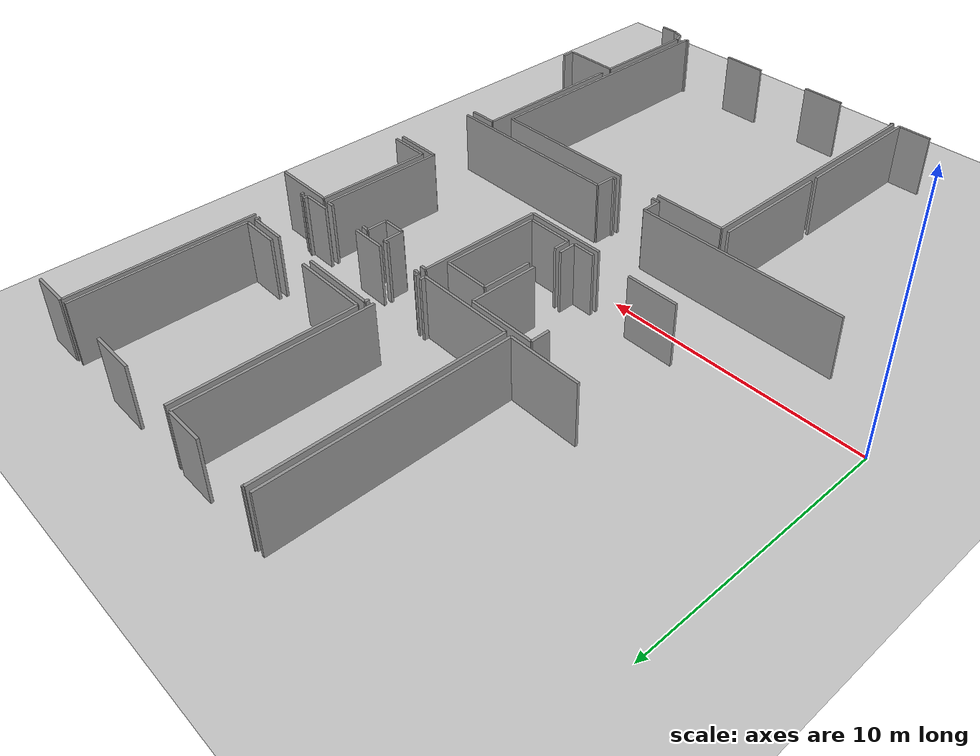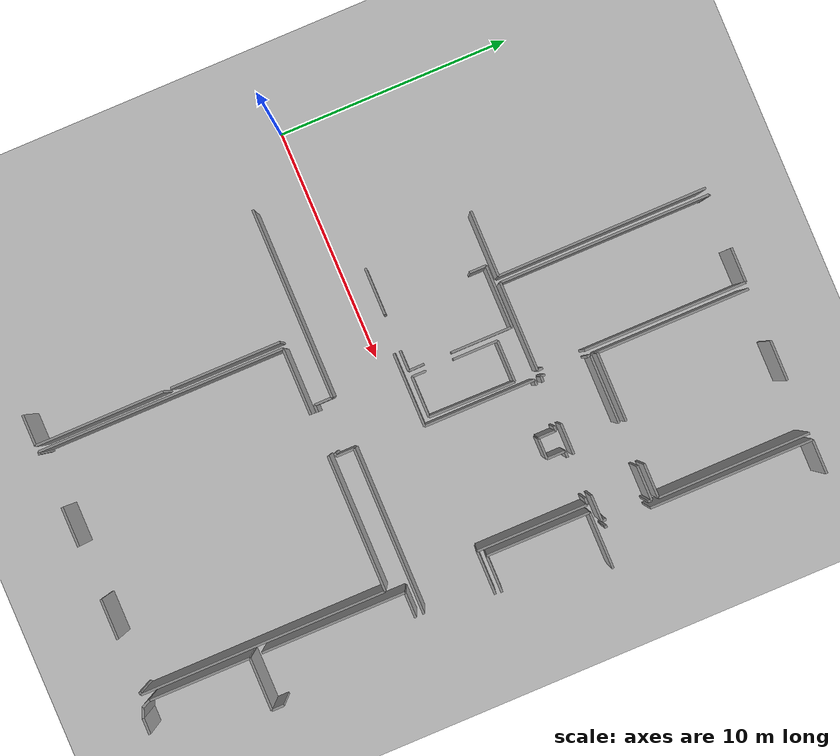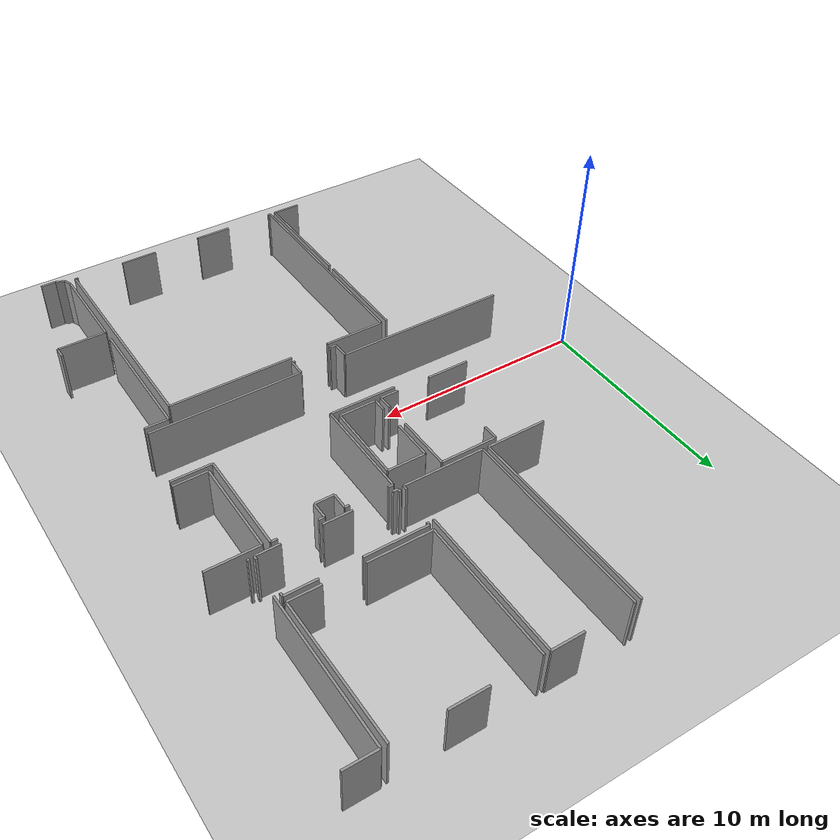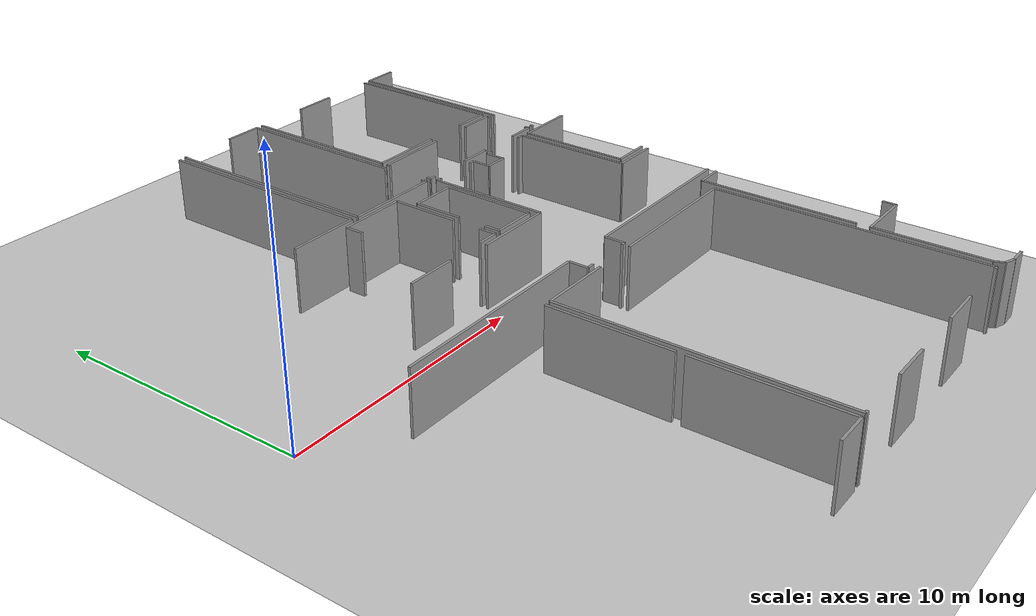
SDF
<sdf version="1.6">
 <world name="default">
  <model name="ground_plane">
   <static>1</static>
   <link name="link">
    <collision name="collision">
     <geometry><plane><normal>0 0 1</normal><size>100 100</size></plane></geometry>
     <surface><friction><ode><mu>100</mu><mu2>50</mu2></ode></friction></surface>
    </collision>
    <visual name="visual">
     <cast_shadows>0</cast_shadows>
     <geometry><plane><normal>0 0 1</normal><size>100 100</size></plane></geometry>
     <material>
      <script><uri>file://media/materials/scripts/gazebo.material</uri><name>Gazebo/Grey</name></script>
     </material>
    </visual>
   </link>
  </model>
  <model name="0510032266_A_40_1_103">
   <static>1</static>
   <link name="Wall_108">
    <collision name="Wall_108_Collision">
     <geometry><box><size>3.15747376707 0.1 2.5</size></box></geometry>
     <pose>1.57873688353 0 1.25 0 0 0</pose>
    </collision>
    <visual name="Wall_108_Visual">
     <pose>1.57873688353 0 1.25 0 0 0</pose>
     <geometry><box><size>3.15747376707 0.1 2.5</size></box></geometry>
     <material>
      <script><uri>file://media/materials/scripts/gazebo.material</uri><name>Gazebo/Grey</name></script>
      <ambient>1 1 1 1</ambient>
     </material>
    </visual>
    <pose>57.7516806216 -14.0638985343 0 0 0 0.0</pose>
   </link>
   <link name="Wall_109">
    <collision name="Wall_109_Collision">
     <geometry><box><size>4.76490341584 0.1 2.5</size></box></geometry>
     <pose>2.38245170792 0 1.25 0 0 0</pose>
    </collision>
    <visual name="Wall_109_Visual">
     <pose>2.38245170792 0 1.25 0 0 0</pose>
     <geometry><box><size>4.76490341584 0.1 2.5</size></box></geometry>
     <material>
      <script><uri>file://media/materials/scripts/gazebo.material</uri><name>Gazebo/Grey</name></script>
      <ambient>1 1 1 1</ambient>
     </material>
    </visual>
    <pose>60.9091543887 -14.0638985343 0 0 0 1.57079632679</pose>
   </link>
   <link name="Wall_110">
    <collision name="Wall_110_Collision">
     <geometry><box><size>0.227764693933 0.1 2.5</size></box></geometry>
     <pose>0.113882346967 0 1.25 0 0 0</pose>
    </collision>
    <visual name="Wall_110_Visual">
     <pose>0.113882346967 0 1.25 0 0 0</pose>
     <geometry><box><size>0.227764693933 0.1 2.5</size></box></geometry>
     <material>
      <script><uri>file://media/materials/scripts/gazebo.material</uri><name>Gazebo/Grey</name></script>
      <ambient>1 1 1 1</ambient>
     </material>
    </visual>
    <pose>60.9091543887 -9.29899511842 0 0 0 0.0</pose>
   </link>
   <link name="Wall_111">
    <collision name="Wall_111_Collision">
     <geometry><box><size>0.201991988878 0.1 2.5</size></box></geometry>
     <pose>0.100995994439 0 1.25 0 0 0</pose>
    </collision>
    <visual name="Wall_111_Visual">
     <pose>0.100995994439 0 1.25 0 0 0</pose>
     <geometry><box><size>0.201991988878 0.1 2.5</size></box></geometry>
     <material>
      <script><uri>file://media/materials/scripts/gazebo.material</uri><name>Gazebo/Grey</name></script>
      <ambient>1 1 1 1</ambient>
     </material>
    </visual>
    <pose>62.9064755508 -9.29899511842 0 0 0 0.0</pose>
   </link>
   <link name="Wall_112">
    <collision name="Wall_112_Collision">
     <geometry><box><size>0.766833194736 0.1 2.5</size></box></geometry>
     <pose>0.383416597368 0 1.25 0 0 0</pose>
    </collision>
    <visual name="Wall_112_Visual">
     <pose>0.383416597368 0 1.25 0 0 0</pose>
     <geometry><box><size>0.766833194736 0.1 2.5</size></box></geometry>
     <material>
      <script><uri>file://media/materials/scripts/gazebo.material</uri><name>Gazebo/Grey</name></script>
      <ambient>1 1 1 1</ambient>
     </material>
    </visual>
    <pose>63.1084675397 -9.29899511842 0 0 0 -1.57079632679</pose>
   </link>
   <link name="Wall_113">
    <collision name="Wall_113_Collision">
     <geometry><box><size>0.896331515702 0.1 2.5</size></box></geometry>
     <pose>0.448165757851 0 1.25 0 0 0</pose>
    </collision>
    <visual name="Wall_113_Visual">
     <pose>0.448165757851 0 1.25 0 0 0</pose>
     <geometry><box><size>0.896331515702 0.1 2.5</size></box></geometry>
     <material>
      <script><uri>file://media/materials/scripts/gazebo.material</uri><name>Gazebo/Grey</name></script>
      <ambient>1 1 1 1</ambient>
     </material>
    </visual>
    <pose>63.1084675397 -10.0658283132 0 0 0 0.0</pose>
   </link>
   <link name="Wall_114">
    <collision name="Wall_114_Collision">
     <geometry><box><size>0.782703087011 0.1 2.5</size></box></geometry>
     <pose>0.391351543506 0 1.25 0 0 0</pose>
    </collision>
    <visual name="Wall_114_Visual">
     <pose>0.391351543506 0 1.25 0 0 0</pose>
     <geometry><box><size>0.782703087011 0.1 2.5</size></box></geometry>
     <material>
      <script><uri>file://media/materials/scripts/gazebo.material</uri><name>Gazebo/Grey</name></script>
      <ambient>1 1 1 1</ambient>
     </material>
    </visual>
    <pose>64.0047990554 -10.0658283132 0 0 0 1.57079632679</pose>
   </link>
   <link name="Wall_115">
    <collision name="Wall_115_Collision">
     <geometry><box><size>0.265090680564 0.1 2.5</size></box></geometry>
     <pose>0.132545340282 0 1.25 0 0 0</pose>
    </collision>
    <visual name="Wall_115_Visual">
     <pose>0.132545340282 0 1.25 0 0 0</pose>
     <geometry><box><size>0.265090680564 0.1 2.5</size></box></geometry>
     <material>
      <script><uri>file://media/materials/scripts/gazebo.material</uri><name>Gazebo/Grey</name></script>
      <ambient>1 1 1 1</ambient>
     </material>
    </visual>
    <pose>64.0047990554 -9.28312522615 0 0 0 0.0</pose>
   </link>
   <link name="Wall_116">
    <collision name="Wall_116_Collision">
     <geometry><box><size>0.28375367388 0.1 2.5</size></box></geometry>
     <pose>0.14187683694 0 1.25 0 0 0</pose>
    </collision>
    <visual name="Wall_116_Visual">
     <pose>0.14187683694 0 1.25 0 0 0</pose>
     <geometry><box><size>0.28375367388 0.1 2.5</size></box></geometry>
     <material>
      <script><uri>file://media/materials/scripts/gazebo.material</uri><name>Gazebo/Grey</name></script>
      <ambient>1 1 1 1</ambient>
     </material>
    </visual>
    <pose>66.0330982473 -9.28312522615 0 0 0 0.0</pose>
   </link>
   <link name="Wall_117">
    <collision name="Wall_117_Collision">
     <geometry><box><size>4.78331249087 0.1 2.5</size></box></geometry>
     <pose>2.39165624544 0 1.25 0 0 0</pose>
    </collision>
    <visual name="Wall_117_Visual">
     <pose>2.39165624544 0 1.25 0 0 0</pose>
     <geometry><box><size>4.78331249087 0.1 2.5</size></box></geometry>
     <material>
      <script><uri>file://media/materials/scripts/gazebo.material</uri><name>Gazebo/Grey</name></script>
      <ambient>1 1 1 1</ambient>
     </material>
    </visual>
    <pose>66.3168519212 -9.28312522615 0 0 0 -1.57079632679</pose>
   </link>
   <link name="Wall_118">
    <collision name="Wall_118_Collision">
     <geometry><box><size>1.86617237242 0.1 2.5</size></box></geometry>
     <pose>0.933086186211 0 1.25 0 0 0</pose>
    </collision>
    <visual name="Wall_118_Visual">
     <pose>0.933086186211 0 1.25 0 0 0</pose>
     <geometry><box><size>1.86617237242 0.1 2.5</size></box></geometry>
     <material>
      <script><uri>file://media/materials/scripts/gazebo.material</uri><name>Gazebo/Grey</name></script>
      <ambient>1 1 1 1</ambient>
     </material>
    </visual>
    <pose>66.3168519212 -14.066437717 0 0 0 0.0</pose>
   </link>
   <link name="Wall_123">
    <collision name="Wall_123_Collision">
     <geometry><box><size>7.15643270213 0.1 2.5</size></box></geometry>
     <pose>3.57821635107 0 1.25 0 0 0</pose>
    </collision>
    <visual name="Wall_123_Visual">
     <pose>3.57821635107 0 1.25 0 0 0</pose>
     <geometry><box><size>7.15643270213 0.1 2.5</size></box></geometry>
     <material>
      <script><uri>file://media/materials/scripts/gazebo.material</uri><name>Gazebo/Grey</name></script>
      <ambient>1 1 1 1</ambient>
     </material>
    </visual>
    <pose>67.8006233694 -17.0007173191 0 0 0 3.14159265359</pose>
   </link>
   <link name="Wall_124">
    <collision name="Wall_124_Collision">
     <geometry><box><size>0.779529108556 0.1 2.5</size></box></geometry>
     <pose>0.389764554278 0 1.25 0 0 0</pose>
    </collision>
    <visual name="Wall_124_Visual">
     <pose>0.389764554278 0 1.25 0 0 0</pose>
     <geometry><box><size>0.779529108556 0.1 2.5</size></box></geometry>
     <material>
      <script><uri>file://media/materials/scripts/gazebo.material</uri><name>Gazebo/Grey</name></script>
      <ambient>1 1 1 1</ambient>
     </material>
    </visual>
    <pose>60.6441906672 -17.0007173191 0 0 0 -1.57079632679</pose>
   </link>
   <link name="Wall_125">
    <collision name="Wall_125_Collision">
     <geometry><box><size>0.145749090655 0.1 2.5</size></box></geometry>
     <pose>0.0728745453276 0 1.25 0 0 0</pose>
    </collision>
    <visual name="Wall_125_Visual">
     <pose>0.0728745453276 0 1.25 0 0 0</pose>
     <geometry><box><size>0.145749090655 0.1 2.5</size></box></geometry>
     <material>
      <script><uri>file://media/materials/scripts/gazebo.material</uri><name>Gazebo/Grey</name></script>
      <ambient>1 1 1 1</ambient>
     </material>
    </visual>
    <pose>60.6441906672 -17.7802464277 0 0 0 3.14159265359</pose>
   </link>
   <link name="Wall_126">
    <collision name="Wall_126_Collision">
     <geometry><box><size>0.308891583244 0.1 2.5</size></box></geometry>
     <pose>0.154445791622 0 1.25 0 0 0</pose>
    </collision>
    <visual name="Wall_126_Visual">
     <pose>0.154445791622 0 1.25 0 0 0</pose>
     <geometry><box><size>0.308891583244 0.1 2.5</size></box></geometry>
     <material>
      <script><uri>file://media/materials/scripts/gazebo.material</uri><name>Gazebo/Grey</name></script>
      <ambient>1 1 1 1</ambient>
     </material>
    </visual>
    <pose>58.7287581492 -17.7802464277 0 0 0 3.14159265359</pose>
   </link>
   <link name="Wall_127">
    <collision name="Wall_127_Collision">
     <geometry><box><size>0.759596523859 0.1 2.5</size></box></geometry>
     <pose>0.379798261929 0 1.25 0 0 0</pose>
    </collision>
    <visual name="Wall_127_Visual">
     <pose>0.379798261929 0 1.25 0 0 0</pose>
     <geometry><box><size>0.759596523859 0.1 2.5</size></box></geometry>
     <material>
      <script><uri>file://media/materials/scripts/gazebo.material</uri><name>Gazebo/Grey</name></script>
      <ambient>1 1 1 1</ambient>
     </material>
    </visual>
    <pose>58.4198665659 -17.7802464277 0 0 0 1.57079632679</pose>
   </link>
   <link name="Wall_128">
    <collision name="Wall_128_Collision">
     <geometry><box><size>8.13909643181 0.1 2.5</size></box></geometry>
     <pose>4.06954821591 0 1.25 0 0 0</pose>
    </collision>
    <visual name="Wall_128_Visual">
     <pose>4.06954821591 0 1.25 0 0 0</pose>
     <geometry><box><size>8.13909643181 0.1 2.5</size></box></geometry>
     <material>
      <script><uri>file://media/materials/scripts/gazebo.material</uri><name>Gazebo/Grey</name></script>
      <ambient>1 1 1 1</ambient>
     </material>
    </visual>
    <pose>58.4198665659 -17.0206499038 0 0 0 3.14159265359</pose>
   </link>
   <link name="Wall_214">
    <collision name="Wall_214_Collision">
     <geometry><box><size>2.82242860135 0.1 2.5</size></box></geometry>
     <pose>1.41121430068 0 1.25 0 0 0</pose>
    </collision>
    <visual name="Wall_214_Visual">
     <pose>1.41121430068 0 1.25 0 0 0</pose>
     <geometry><box><size>2.82242860135 0.1 2.5</size></box></geometry>
     <material>
      <script><uri>file://media/materials/scripts/gazebo.material</uri><name>Gazebo/Grey</name></script>
      <ambient>1 1 1 1</ambient>
     </material>
    </visual>
    <pose>56.5286832433 -9.01435273057 0 0 0 3.14159265359</pose>
   </link>
   <link name="Wall_219">
    <collision name="Wall_219_Collision">
     <geometry><box><size>8.99521125316 0.1 2.5</size></box></geometry>
     <pose>4.49760562658 0 1.25 0 0 0</pose>
    </collision>
    <visual name="Wall_219_Visual">
     <pose>4.49760562658 0 1.25 0 0 0</pose>
     <geometry><box><size>8.99521125316 0.1 2.5</size></box></geometry>
     <material>
      <script><uri>file://media/materials/scripts/gazebo.material</uri><name>Gazebo/Grey</name></script>
      <ambient>1 1 1 1</ambient>
     </material>
    </visual>
    <pose>56.5057036393 -0.0191708298684 0 0 0 -1.5682416754</pose>
   </link>
   <link name="Wall_235">
    <collision name="Wall_235_Collision">
     <geometry><box><size>1.32900825869 0.1 2.5</size></box></geometry>
     <pose>0.664504129346 0 1.25 0 0 0</pose>
    </collision>
    <visual name="Wall_235_Visual">
     <pose>0.664504129346 0 1.25 0 0 0</pose>
     <geometry><box><size>1.32900825869 0.1 2.5</size></box></geometry>
     <material>
      <script><uri>file://media/materials/scripts/gazebo.material</uri><name>Gazebo/Grey</name></script>
      <ambient>1 1 1 1</ambient>
     </material>
    </visual>
    <pose>55.5879160292 -28.6653420597 0 0 0 3.14159265359</pose>
   </link>
   <link name="Wall_241">
    <collision name="Wall_241_Collision">
     <geometry><box><size>5.52705015927 0.1 2.5</size></box></geometry>
     <pose>2.76352507963 0 1.25 0 0 0</pose>
    </collision>
    <visual name="Wall_241_Visual">
     <pose>2.76352507963 0 1.25 0 0 0</pose>
     <geometry><box><size>5.52705015927 0.1 2.5</size></box></geometry>
     <material>
      <script><uri>file://media/materials/scripts/gazebo.material</uri><name>Gazebo/Grey</name></script>
      <ambient>1 1 1 1</ambient>
     </material>
    </visual>
    <pose>55.5768705842 -23.1383029372 0 0 0 -1.56879789145</pose>
   </link>
   <link name="Wall_246">
    <collision name="Wall_246_Collision">
     <geometry><box><size>4.74941537839 0.1 2.5</size></box></geometry>
     <pose>2.3747076892 0 1.25 0 0 0</pose>
    </collision>
    <visual name="Wall_246_Visual">
     <pose>2.3747076892 0 1.25 0 0 0</pose>
     <geometry><box><size>4.74941537839 0.1 2.5</size></box></geometry>
     <material>
      <script><uri>file://media/materials/scripts/gazebo.material</uri><name>Gazebo/Grey</name></script>
      <ambient>1 1 1 1</ambient>
     </material>
    </visual>
    <pose>55.5717922187 -18.0695863036 0 0 0 -1.57143788355</pose>
   </link>
   <link name="Wall_247">
    <collision name="Wall_247_Collision">
     <geometry><box><size>0.872209279443 0.1 2.5</size></box></geometry>
     <pose>0.436104639722 0 1.25 0 0 0</pose>
    </collision>
    <visual name="Wall_247_Visual">
     <pose>0.436104639722 0 1.25 0 0 0</pose>
     <geometry><box><size>0.872209279443 0.1 2.5</size></box></geometry>
     <material>
      <script><uri>file://media/materials/scripts/gazebo.material</uri><name>Gazebo/Grey</name></script>
      <ambient>1 1 1 1</ambient>
     </material>
    </visual>
    <pose>58.623889901 -13.7903015914 0 0 0 3.14159265359</pose>
   </link>
   <link name="Wall_248">
    <collision name="Wall_248_Collision">
     <geometry><box><size>2.00811268893 0.1 2.5</size></box></geometry>
     <pose>1.00405634447 0 1.25 0 0 0</pose>
    </collision>
    <visual name="Wall_248_Visual">
     <pose>1.00405634447 0 1.25 0 0 0</pose>
     <geometry><box><size>2.00811268893 0.1 2.5</size></box></geometry>
     <material>
      <script><uri>file://media/materials/scripts/gazebo.material</uri><name>Gazebo/Grey</name></script>
      <ambient>1 1 1 1</ambient>
     </material>
    </visual>
    <pose>56.1752290025 -13.7903015914 0 0 0 3.14159265359</pose>
   </link>
   <link name="Wall_251">
    <collision name="Wall_251_Collision">
     <geometry><box><size>0.71998527274 0.1 2.5</size></box></geometry>
     <pose>0.35999263637 0 1.25 0 0 0</pose>
    </collision>
    <visual name="Wall_251_Visual">
     <pose>0.35999263637 0 1.25 0 0 0</pose>
     <geometry><box><size>0.71998527274 0.1 2.5</size></box></geometry>
     <material>
      <script><uri>file://media/materials/scripts/gazebo.material</uri><name>Gazebo/Grey</name></script>
      <ambient>1 1 1 1</ambient>
     </material>
    </visual>
    <pose>55.9526696333 -10.0222813288 0 0 0 1.57079632679</pose>
   </link>
   <link name="Wall_252">
    <collision name="Wall_252_Collision">
     <geometry><box><size>2.65915914963 0.1 2.5</size></box></geometry>
     <pose>1.32957957481 0 1.25 0 0 0</pose>
    </collision>
    <visual name="Wall_252_Visual">
     <pose>1.32957957481 0 1.25 0 0 0</pose>
     <geometry><box><size>2.65915914963 0.1 2.5</size></box></geometry>
     <material>
      <script><uri>file://media/materials/scripts/gazebo.material</uri><name>Gazebo/Grey</name></script>
      <ambient>1 1 1 1</ambient>
     </material>
    </visual>
    <pose>55.9526696333 -9.30229605601 0 0 0 0.0</pose>
   </link>
   <link name="Wall_253">
    <collision name="Wall_253_Collision">
     <geometry><box><size>2.63160901664 0.1 2.5</size></box></geometry>
     <pose>1.31580450832 0 1.25 0 0 0</pose>
    </collision>
    <visual name="Wall_253_Visual">
     <pose>1.31580450832 0 1.25 0 0 0</pose>
     <geometry><box><size>2.63160901664 0.1 2.5</size></box></geometry>
     <material>
      <script><uri>file://media/materials/scripts/gazebo.material</uri><name>Gazebo/Grey</name></script>
      <ambient>1 1 1 1</ambient>
     </material>
    </visual>
    <pose>58.6118287829 -9.30229605601 0 0 0 -1.57079632679</pose>
   </link>
   <link name="Wall_254">
    <collision name="Wall_254_Collision">
     <geometry><box><size>0.680480918077 0.1 2.5</size></box></geometry>
     <pose>0.340240459039 0 1.25 0 0 0</pose>
    </collision>
    <visual name="Wall_254_Visual">
     <pose>0.340240459039 0 1.25 0 0 0</pose>
     <geometry><box><size>0.680480918077 0.1 2.5</size></box></geometry>
     <material>
      <script><uri>file://media/materials/scripts/gazebo.material</uri><name>Gazebo/Grey</name></script>
      <ambient>1 1 1 1</ambient>
     </material>
    </visual>
    <pose>58.6118287829 -13.1099275698 0 0 0 -1.55307099548</pose>
   </link>
   <link name="Wall_255">
    <collision name="Wall_255_Collision">
     <geometry><box><size>1.74352984492 0.1 2.5</size></box></geometry>
     <pose>0.87176492246 0 1.25 0 0 0</pose>
    </collision>
    <visual name="Wall_255_Visual">
     <pose>0.87176492246 0 1.25 0 0 0</pose>
     <geometry><box><size>1.74352984492 0.1 2.5</size></box></geometry>
     <material>
      <script><uri>file://media/materials/scripts/gazebo.material</uri><name>Gazebo/Grey</name></script>
      <ambient>1 1 1 1</ambient>
     </material>
    </visual>
    <pose>60.6374618329 -13.7566574198 0 0 0 3.14159265359</pose>
   </link>
   <link name="Wall_256">
    <collision name="Wall_256_Collision">
     <geometry><box><size>0.610419536472 0.1 2.5</size></box></geometry>
     <pose>0.305209768236 0 1.25 0 0 0</pose>
    </collision>
    <visual name="Wall_256_Visual">
     <pose>0.305209768236 0 1.25 0 0 0</pose>
     <geometry><box><size>0.610419536472 0.1 2.5</size></box></geometry>
     <material>
      <script><uri>file://media/materials/scripts/gazebo.material</uri><name>Gazebo/Grey</name></script>
      <ambient>1 1 1 1</ambient>
     </material>
    </visual>
    <pose>58.893931988 -13.7566574198 0 0 0 1.57079632679</pose>
   </link>
   <link name="Wall_257">
    <collision name="Wall_257_Collision">
     <geometry><box><size>1.91035415252 0.1 2.5</size></box></geometry>
     <pose>0.955177076258 0 1.25 0 0 0</pose>
    </collision>
    <visual name="Wall_257_Visual">
     <pose>0.955177076258 0 1.25 0 0 0</pose>
     <geometry><box><size>1.91035415252 0.1 2.5</size></box></geometry>
     <material>
      <script><uri>file://media/materials/scripts/gazebo.material</uri><name>Gazebo/Grey</name></script>
      <ambient>1 1 1 1</ambient>
     </material>
    </visual>
    <pose>58.893931988 -11.9614552056 0 0 0 1.57079632679</pose>
   </link>
   <link name="Wall_258">
    <collision name="Wall_258_Collision">
     <geometry><box><size>1.78199846379 0.1 2.5</size></box></geometry>
     <pose>0.890999231897 0 1.25 0 0 0</pose>
    </collision>
    <visual name="Wall_258_Visual">
     <pose>0.890999231897 0 1.25 0 0 0</pose>
     <geometry><box><size>1.78199846379 0.1 2.5</size></box></geometry>
     <material>
      <script><uri>file://media/materials/scripts/gazebo.material</uri><name>Gazebo/Grey</name></script>
      <ambient>1 1 1 1</ambient>
     </material>
    </visual>
    <pose>58.893931988 -10.0511010531 0 0 0 0.0</pose>
   </link>
   <link name="Wall_259">
    <collision name="Wall_259_Collision">
     <geometry><box><size>3.7057560391 0.1 2.5</size></box></geometry>
     <pose>1.85287801955 0 1.25 0 0 0</pose>
    </collision>
    <visual name="Wall_259_Visual">
     <pose>1.85287801955 0 1.25 0 0 0</pose>
     <geometry><box><size>3.7057560391 0.1 2.5</size></box></geometry>
     <material>
      <script><uri>file://media/materials/scripts/gazebo.material</uri><name>Gazebo/Grey</name></script>
      <ambient>1 1 1 1</ambient>
     </material>
    </visual>
    <pose>60.6759304518 -10.0511010531 0 0 0 -1.58117728804</pose>
   </link>
   <link name="Wall_260">
    <collision name="Wall_260_Collision">
     <geometry><box><size>0.128863525274 0.1 2.5</size></box></geometry>
     <pose>0.0644317626372 0 1.25 0 0 0</pose>
    </collision>
    <visual name="Wall_260_Visual">
     <pose>0.0644317626372 0 1.25 0 0 0</pose>
     <geometry><box><size>0.128863525274 0.1 2.5</size></box></geometry>
     <material>
      <script><uri>file://media/materials/scripts/gazebo.material</uri><name>Gazebo/Grey</name></script>
      <ambient>1 1 1 1</ambient>
     </material>
    </visual>
    <pose>66.3843941827 -28.6498530448 0 0 0 3.14159265359</pose>
   </link>
   <link name="Wall_261">
    <collision name="Wall_261_Collision">
     <geometry><box><size>1.73591229663 0.1 2.5</size></box></geometry>
     <pose>0.867956148314 0 1.25 0 0 0</pose>
    </collision>
    <visual name="Wall_261_Visual">
     <pose>0.867956148314 0 1.25 0 0 0</pose>
     <geometry><box><size>1.73591229663 0.1 2.5</size></box></geometry>
     <material>
      <script><uri>file://media/materials/scripts/gazebo.material</uri><name>Gazebo/Grey</name></script>
      <ambient>1 1 1 1</ambient>
     </material>
    </visual>
    <pose>63.9871517352 -28.6498530448 0 0 0 3.14159265359</pose>
   </link>
   <link name="Wall_262">
    <collision name="Wall_262_Collision">
     <geometry><box><size>1.71242485606 0.1 2.5</size></box></geometry>
     <pose>0.85621242803 0 1.25 0 0 0</pose>
    </collision>
    <visual name="Wall_262_Visual">
     <pose>0.85621242803 0 1.25 0 0 0</pose>
     <geometry><box><size>1.71242485606 0.1 2.5</size></box></geometry>
     <material>
      <script><uri>file://media/materials/scripts/gazebo.material</uri><name>Gazebo/Grey</name></script>
      <ambient>1 1 1 1</ambient>
     </material>
    </visual>
    <pose>59.972449867 -28.6498530448 0 0 0 3.14159265359</pose>
   </link>
   <link name="Wall_263">
    <collision name="Wall_263_Collision">
     <geometry><box><size>0.126197383372 0.1 2.5</size></box></geometry>
     <pose>0.0630986916861 0 1.25 0 0 0</pose>
    </collision>
    <visual name="Wall_263_Visual">
     <pose>0.0630986916861 0 1.25 0 0 0</pose>
     <geometry><box><size>0.126197383372 0.1 2.5</size></box></geometry>
     <material>
      <script><uri>file://media/materials/scripts/gazebo.material</uri><name>Gazebo/Grey</name></script>
      <ambient>1 1 1 1</ambient>
     </material>
    </visual>
    <pose>55.9821241533 -28.6498530448 0 0 0 3.14159265359</pose>
   </link>
   <link name="Wall_264">
    <collision name="Wall_264_Collision">
     <geometry><box><size>10.577346681 0.1 2.5</size></box></geometry>
     <pose>5.28867334049 0 1.25 0 0 0</pose>
    </collision>
    <visual name="Wall_264_Visual">
     <pose>5.28867334049 0 1.25 0 0 0</pose>
     <geometry><box><size>10.577346681 0.1 2.5</size></box></geometry>
     <material>
      <script><uri>file://media/materials/scripts/gazebo.material</uri><name>Gazebo/Grey</name></script>
      <ambient>1 1 1 1</ambient>
     </material>
    </visual>
    <pose>55.85592677 -28.6498530448 0 0 0 1.57079632679</pose>
   </link>
   <link name="Wall_265">
    <collision name="Wall_265_Collision">
     <geometry><box><size>2.85607277298 0.1 2.5</size></box></geometry>
     <pose>1.42803638649 0 1.25 0 0 0</pose>
    </collision>
    <visual name="Wall_265_Visual">
     <pose>1.42803638649 0 1.25 0 0 0</pose>
     <geometry><box><size>2.85607277298 0.1 2.5</size></box></geometry>
     <material>
      <script><uri>file://media/materials/scripts/gazebo.material</uri><name>Gazebo/Grey</name></script>
      <ambient>1 1 1 1</ambient>
     </material>
    </visual>
    <pose>55.85592677 -18.0725063638 0 0 0 0.0</pose>
   </link>
   <link name="Wall_266">
    <collision name="Wall_266_Collision">
     <geometry><box><size>5.85789463661 0.1 2.5</size></box></geometry>
     <pose>2.92894731831 0 1.25 0 0 0</pose>
    </collision>
    <visual name="Wall_266_Visual">
     <pose>2.92894731831 0 1.25 0 0 0</pose>
     <geometry><box><size>5.85789463661 0.1 2.5</size></box></geometry>
     <material>
      <script><uri>file://media/materials/scripts/gazebo.material</uri><name>Gazebo/Grey</name></script>
      <ambient>1 1 1 1</ambient>
     </material>
    </visual>
    <pose>60.508979185 -18.0725063638 0 0 0 0.0</pose>
   </link>
   <link name="Wall_267">
    <collision name="Wall_267_Collision">
     <geometry><box><size>10.5773611914 0.1 2.5</size></box></geometry>
     <pose>5.28868059568 0 1.25 0 0 0</pose>
    </collision>
    <visual name="Wall_267_Visual">
     <pose>5.28868059568 0 1.25 0 0 0</pose>
     <geometry><box><size>10.5773611914 0.1 2.5</size></box></geometry>
     <material>
      <script><uri>file://media/materials/scripts/gazebo.material</uri><name>Gazebo/Grey</name></script>
      <ambient>1 1 1 1</ambient>
     </material>
    </visual>
    <pose>66.3668738217 -18.0725063638 0 0 0 -1.56913992415</pose>
   </link>
   <link name="Wall_268">
    <collision name="Wall_268_Collision">
     <geometry><box><size>1.11025766357 0.1 2.5</size></box></geometry>
     <pose>0.555128831785 0 1.25 0 0 0</pose>
    </collision>
    <visual name="Wall_268_Visual">
     <pose>0.555128831785 0 1.25 0 0 0</pose>
     <geometry><box><size>1.11025766357 0.1 2.5</size></box></geometry>
     <material>
      <script><uri>file://media/materials/scripts/gazebo.material</uri><name>Gazebo/Grey</name></script>
      <ambient>1 1 1 1</ambient>
     </material>
    </visual>
    <pose>67.1433559109 -9.00673518228 0 0 0 3.14159265359</pose>
   </link>
   <link name="Wall_269">
    <collision name="Wall_269_Collision">
     <geometry><box><size>1.32481860713 0.1 2.5</size></box></geometry>
     <pose>0.662409303566 0 1.25 0 0 0</pose>
    </collision>
    <visual name="Wall_269_Visual">
     <pose>0.662409303566 0 1.25 0 0 0</pose>
     <geometry><box><size>1.32481860713 0.1 2.5</size></box></geometry>
     <material>
      <script><uri>file://media/materials/scripts/gazebo.material</uri><name>Gazebo/Grey</name></script>
      <ambient>1 1 1 1</ambient>
     </material>
    </visual>
    <pose>64.2566859856 -9.00673518228 0 0 0 3.14159265359</pose>
   </link>
   <link name="Wall_270">
    <collision name="Wall_270_Collision">
     <geometry><box><size>0.250490379671 0.1 2.5</size></box></geometry>
     <pose>0.125245189836 0 1.25 0 0 0</pose>
    </collision>
    <visual name="Wall_270_Visual">
     <pose>0.125245189836 0 1.25 0 0 0</pose>
     <geometry><box><size>0.250490379671 0.1 2.5</size></box></geometry>
     <material>
      <script><uri>file://media/materials/scripts/gazebo.material</uri><name>Gazebo/Grey</name></script>
      <ambient>1 1 1 1</ambient>
     </material>
    </visual>
    <pose>61.1246040462 -9.00673518228 0 0 0 3.14159265359</pose>
   </link>
   <link name="Wall_271">
    <collision name="Wall_271_Collision">
     <geometry><box><size>0.175203610718 0.1 2.5</size></box></geometry>
     <pose>0.0876018053589 0 1.25 0 0 0</pose>
    </collision>
    <visual name="Wall_271_Visual">
     <pose>0.0876018053589 0 1.25 0 0 0</pose>
     <geometry><box><size>0.175203610718 0.1 2.5</size></box></geometry>
     <material>
      <script><uri>file://media/materials/scripts/gazebo.material</uri><name>Gazebo/Grey</name></script>
      <ambient>1 1 1 1</ambient>
     </material>
    </visual>
    <pose>60.8741136665 -9.00673518228 0 0 0 1.57079632679</pose>
   </link>
   <link name="Wall_272">
    <collision name="Wall_272_Collision">
     <geometry><box><size>0.152350965842 0.1 2.5</size></box></geometry>
     <pose>0.0761754829208 0 1.25 0 0 0</pose>
    </collision>
    <visual name="Wall_272_Visual">
     <pose>0.0761754829208 0 1.25 0 0 0</pose>
     <geometry><box><size>0.152350965842 0.1 2.5</size></box></geometry>
     <material>
      <script><uri>file://media/materials/scripts/gazebo.material</uri><name>Gazebo/Grey</name></script>
      <ambient>1 1 1 1</ambient>
     </material>
    </visual>
    <pose>60.8741136665 -7.00624004164 0 0 0 1.57079632679</pose>
   </link>
   <link name="Wall_273">
    <collision name="Wall_273_Collision">
     <geometry><box><size>2.93846925367 0.1 2.5</size></box></geometry>
     <pose>1.46923462684 0 1.25 0 0 0</pose>
    </collision>
    <visual name="Wall_273_Visual">
     <pose>1.46923462684 0 1.25 0 0 0</pose>
     <geometry><box><size>2.93846925367 0.1 2.5</size></box></geometry>
     <material>
      <script><uri>file://media/materials/scripts/gazebo.material</uri><name>Gazebo/Grey</name></script>
      <ambient>1 1 1 1</ambient>
     </material>
    </visual>
    <pose>60.8741136665 -6.8538890758 0 0 0 0.0</pose>
   </link>
   <link name="Wall_274">
    <collision name="Wall_274_Collision">
     <geometry><box><size>1.48085138798 0.1 2.5</size></box></geometry>
     <pose>0.74042569399 0 1.25 0 0 0</pose>
    </collision>
    <visual name="Wall_274_Visual">
     <pose>0.74042569399 0 1.25 0 0 0</pose>
     <geometry><box><size>1.48085138798 0.1 2.5</size></box></geometry>
     <material>
      <script><uri>file://media/materials/scripts/gazebo.material</uri><name>Gazebo/Grey</name></script>
      <ambient>1 1 1 1</ambient>
     </material>
    </visual>
    <pose>65.6664402562 -6.8538890758 0 0 0 0.0</pose>
   </link>
   <link name="Wall_275">
    <collision name="Wall_275_Collision">
     <geometry><box><size>0.173045305368 0.1 2.5</size></box></geometry>
     <pose>0.0865226526842 0 1.25 0 0 0</pose>
    </collision>
    <visual name="Wall_275_Visual">
     <pose>0.0865226526842 0 1.25 0 0 0</pose>
     <geometry><box><size>0.173045305368 0.1 2.5</size></box></geometry>
     <material>
      <script><uri>file://media/materials/scripts/gazebo.material</uri><name>Gazebo/Grey</name></script>
      <ambient>1 1 1 1</ambient>
     </material>
    </visual>
    <pose>67.1472916442 -6.8538890758 0 0 0 -1.57079632679</pose>
   </link>
   <link name="Wall_276">
    <collision name="Wall_276_Collision">
     <geometry><box><size>0.179690287656 0.1 2.5</size></box></geometry>
     <pose>0.0898451438279 0 1.25 0 0 0</pose>
    </collision>
    <visual name="Wall_276_Visual">
     <pose>0.0898451438279 0 1.25 0 0 0</pose>
     <geometry><box><size>0.179690287656 0.1 2.5</size></box></geometry>
     <material>
      <script><uri>file://media/materials/scripts/gazebo.material</uri><name>Gazebo/Grey</name></script>
      <ambient>1 1 1 1</ambient>
     </material>
    </visual>
    <pose>67.1472916442 -8.82708800173 0 0 0 -1.59270094996</pose>
   </link>
   <link name="Wall_278">
    <collision name="Wall_278_Collision">
     <geometry><box><size>1.57442027284 0.1 2.5</size></box></geometry>
     <pose>0.787210136418 0 1.25 0 0 0</pose>
    </collision>
    <visual name="Wall_278_Visual">
     <pose>0.787210136418 0 1.25 0 0 0</pose>
     <geometry><box><size>1.57442027284 0.1 2.5</size></box></geometry>
     <material>
      <script><uri>file://media/materials/scripts/gazebo.material</uri><name>Gazebo/Grey</name></script>
      <ambient>1 1 1 1</ambient>
     </material>
    </visual>
    <pose>68.211844018 -13.7890320001 0 0 0 3.14159265359</pose>
   </link>
   <link name="Wall_279">
    <collision name="Wall_279_Collision">
     <geometry><box><size>4.45791621966 0.1 2.5</size></box></geometry>
     <pose>2.22895810983 0 1.25 0 0 0</pose>
    </collision>
    <visual name="Wall_279_Visual">
     <pose>2.22895810983 0 1.25 0 0 0</pose>
     <geometry><box><size>4.45791621966 0.1 2.5</size></box></geometry>
     <material>
      <script><uri>file://media/materials/scripts/gazebo.material</uri><name>Gazebo/Grey</name></script>
      <ambient>1 1 1 1</ambient>
     </material>
    </visual>
    <pose>66.6374237452 -13.7890320001 0 0 0 1.57079632679</pose>
   </link>
   <link name="Wall_280">
    <collision name="Wall_280_Collision">
     <geometry><box><size>2.42872831379 0.1 2.5</size></box></geometry>
     <pose>1.2143641569 0 1.25 0 0 0</pose>
    </collision>
    <visual name="Wall_280_Visual">
     <pose>1.2143641569 0 1.25 0 0 0</pose>
     <geometry><box><size>2.42872831379 0.1 2.5</size></box></geometry>
     <material>
      <script><uri>file://media/materials/scripts/gazebo.material</uri><name>Gazebo/Grey</name></script>
      <ambient>1 1 1 1</ambient>
     </material>
    </visual>
    <pose>66.6374237452 -9.33111578039 0 0 0 0.0</pose>
   </link>
   <link name="Wall_285">
    <collision name="Wall_285_Collision">
     <geometry><box><size>0.692942976303 0.1 2.5</size></box></geometry>
     <pose>0.346471488152 0 1.25 0 0 0</pose>
    </collision>
    <visual name="Wall_285_Visual">
     <pose>0.346471488152 0 1.25 0 0 0</pose>
     <geometry><box><size>0.692942976303 0.1 2.5</size></box></geometry>
     <material>
      <script><uri>file://media/materials/scripts/gazebo.material</uri><name>Gazebo/Grey</name></script>
      <ambient>1 1 1 1</ambient>
     </material>
    </visual>
    <pose>67.9781122446 -28.941224267 0 0 0 3.14159265359</pose>
   </link>
   <link name="Wall_286">
    <collision name="Wall_286_Collision">
     <geometry><box><size>0.438603711853 0.1 2.5</size></box></geometry>
     <pose>0.219301855927 0 1.25 0 0 0</pose>
    </collision>
    <visual name="Wall_286_Visual">
     <pose>0.219301855927 0 1.25 0 0 0</pose>
     <geometry><box><size>0.438603711853 0.1 2.5</size></box></geometry>
     <material>
      <script><uri>file://media/materials/scripts/gazebo.material</uri><name>Gazebo/Grey</name></script>
      <ambient>1 1 1 1</ambient>
     </material>
    </visual>
    <pose>67.2851692683 -28.941224267 0 0 0 2.77167557049</pose>
   </link>
   <link name="Wall_287">
    <collision name="Wall_287_Collision">
     <geometry><box><size>0.396862670572 0.1 2.5</size></box></geometry>
     <pose>0.198431335286 0 1.25 0 0 0</pose>
    </collision>
    <visual name="Wall_287_Visual">
     <pose>0.198431335286 0 1.25 0 0 0</pose>
     <geometry><box><size>0.396862670572 0.1 2.5</size></box></geometry>
     <material>
      <script><uri>file://media/materials/scripts/gazebo.material</uri><name>Gazebo/Grey</name></script>
      <ambient>1 1 1 1</ambient>
     </material>
    </visual>
    <pose>66.8762338841 -28.7826523034 0 0 0 1.95926308943</pose>
   </link>
   <link name="Wall_288">
    <collision name="Wall_288_Collision">
     <geometry><box><size>4.33032228577 0.1 2.5</size></box></geometry>
     <pose>2.16516114289 0 1.25 0 0 0</pose>
    </collision>
    <visual name="Wall_288_Visual">
     <pose>2.16516114289 0 1.25 0 0 0</pose>
     <geometry><box><size>4.33032228577 0.1 2.5</size></box></geometry>
     <material>
      <script><uri>file://media/materials/scripts/gazebo.material</uri><name>Gazebo/Grey</name></script>
      <ambient>1 1 1 1</ambient>
     </material>
    </visual>
    <pose>66.7259142645 -28.4153595165 0 0 0 1.57079632679</pose>
   </link>
   <link name="Wall_289">
    <collision name="Wall_289_Collision">
     <geometry><box><size>2.25911090516 0.1 2.5</size></box></geometry>
     <pose>1.12955545258 0 1.25 0 0 0</pose>
    </collision>
    <visual name="Wall_289_Visual">
     <pose>1.12955545258 0 1.25 0 0 0</pose>
     <geometry><box><size>2.25911090516 0.1 2.5</size></box></geometry>
     <material>
      <script><uri>file://media/materials/scripts/gazebo.material</uri><name>Gazebo/Grey</name></script>
      <ambient>1 1 1 1</ambient>
     </material>
    </visual>
    <pose>66.7259142645 -24.0850372308 0 0 0 0.0</pose>
   </link>
   <link name="Wall_290">
    <collision name="Wall_290_Collision">
     <geometry><box><size>0.530181361129 0.1 2.5</size></box></geometry>
     <pose>0.265090680564 0 1.25 0 0 0</pose>
    </collision>
    <visual name="Wall_290_Visual">
     <pose>0.265090680564 0 1.25 0 0 0</pose>
     <geometry><box><size>0.530181361129 0.1 2.5</size></box></geometry>
     <material>
      <script><uri>file://media/materials/scripts/gazebo.material</uri><name>Gazebo/Grey</name></script>
      <ambient>1 1 1 1</ambient>
     </material>
    </visual>
    <pose>68.9850251696 -24.0850372308 0 0 0 1.57079632679</pose>
   </link>
   <link name="Wall_292">
    <collision name="Wall_292_Collision">
     <geometry><box><size>6.19128933353 0.1 2.5</size></box></geometry>
     <pose>3.09564466676 0 1.25 0 0 0</pose>
    </collision>
    <visual name="Wall_292_Visual">
     <pose>3.09564466676 0 1.25 0 0 0</pose>
     <geometry><box><size>6.19128933353 0.1 2.5</size></box></geometry>
     <material>
      <script><uri>file://media/materials/scripts/gazebo.material</uri><name>Gazebo/Grey</name></script>
      <ambient>1 1 1 1</ambient>
     </material>
    </visual>
    <pose>66.719058471 -23.5548558696 0 0 0 1.57079632679</pose>
   </link>
   <link name="Wall_293">
    <collision name="Wall_293_Collision">
     <geometry><box><size>1.09146771112 0.1 2.5</size></box></geometry>
     <pose>0.545733855559 0 1.25 0 0 0</pose>
    </collision>
    <visual name="Wall_293_Visual">
     <pose>0.545733855559 0 1.25 0 0 0</pose>
     <geometry><box><size>1.09146771112 0.1 2.5</size></box></geometry>
     <material>
      <script><uri>file://media/materials/scripts/gazebo.material</uri><name>Gazebo/Grey</name></script>
      <ambient>1 1 1 1</ambient>
     </material>
    </visual>
    <pose>66.719058471 -17.3635665361 0 0 0 0.0</pose>
   </link>
   <link name="Wall_300">
    <collision name="Wall_300_Collision">
     <geometry><box><size>3.80661584069 0.1 2.5</size></box></geometry>
     <pose>1.90330792035 0 1.25 0 0 0</pose>
    </collision>
    <visual name="Wall_300_Visual">
     <pose>1.90330792035 0 1.25 0 0 0</pose>
     <geometry><box><size>3.80661584069 0.1 2.5</size></box></geometry>
     <material>
      <script><uri>file://media/materials/scripts/gazebo.material</uri><name>Gazebo/Grey</name></script>
      <ambient>1 1 1 1</ambient>
     </material>
    </visual>
    <pose>60.6069916397 -9.04012543563 0 0 0 3.14159265359</pose>
   </link>
   <link name="Wall_301">
    <collision name="Wall_301_Collision">
     <geometry><box><size>9.02527121646 0.1 2.5</size></box></geometry>
     <pose>4.51263560823 0 1.25 0 0 0</pose>
    </collision>
    <visual name="Wall_301_Visual">
     <pose>4.51263560823 0 1.25 0 0 0</pose>
     <geometry><box><size>9.02527121646 0.1 2.5</size></box></geometry>
     <material>
      <script><uri>file://media/materials/scripts/gazebo.material</uri><name>Gazebo/Grey</name></script>
      <ambient>1 1 1 1</ambient>
     </material>
    </visual>
    <pose>56.800375799 -9.04012543563 0 0 0 1.57079632679</pose>
   </link>
   <link name="Wall_302">
    <collision name="Wall_302_Collision">
     <geometry><box><size>0.0683040163523 0.1 2.5</size></box></geometry>
     <pose>0.0341520081762 0 1.25 0 0 0</pose>
    </collision>
    <visual name="Wall_302_Visual">
     <pose>0.0341520081762 0 1.25 0 0 0</pose>
     <geometry><box><size>0.0683040163523 0.1 2.5</size></box></geometry>
     <material>
      <script><uri>file://media/materials/scripts/gazebo.material</uri><name>Gazebo/Grey</name></script>
      <ambient>1 1 1 1</ambient>
     </material>
    </visual>
    <pose>56.800375799 -0.0148542191696 0 0 0 0.0</pose>
   </link>
   <link name="Wall_303">
    <collision name="Wall_303_Collision">
     <geometry><box><size>1.49303946525 0.1 2.5</size></box></geometry>
     <pose>0.746519732624 0 1.25 0 0 0</pose>
    </collision>
    <visual name="Wall_303_Visual">
     <pose>0.746519732624 0 1.25 0 0 0</pose>
     <geometry><box><size>1.49303946525 0.1 2.5</size></box></geometry>
     <material>
      <script><uri>file://media/materials/scripts/gazebo.material</uri><name>Gazebo/Grey</name></script>
      <ambient>1 1 1 1</ambient>
     </material>
    </visual>
    <pose>59.105191994 -0.0148542191696 0 0 0 0.0</pose>
   </link>
   <link name="Wall_304">
    <collision name="Wall_304_Collision">
     <geometry><box><size>6.98846576229 0.1 2.5</size></box></geometry>
     <pose>3.49423288115 0 1.25 0 0 0</pose>
    </collision>
    <visual name="Wall_304_Visual">
     <pose>3.49423288115 0 1.25 0 0 0</pose>
     <geometry><box><size>6.98846576229 0.1 2.5</size></box></geometry>
     <material>
      <script><uri>file://media/materials/scripts/gazebo.material</uri><name>Gazebo/Grey</name></script>
      <ambient>1 1 1 1</ambient>
     </material>
    </visual>
    <pose>60.5982314592 -0.0148542191696 0 0 0 -1.57079632679</pose>
   </link>
   <link name="Wall_305">
    <collision name="Wall_305_Collision">
     <geometry><box><size>0.225522674329 0.1 2.5</size></box></geometry>
     <pose>0.112761337165 0 1.25 0 0 0</pose>
    </collision>
    <visual name="Wall_305_Visual">
     <pose>0.112761337165 0 1.25 0 0 0</pose>
     <geometry><box><size>0.225522674329 0.1 2.5</size></box></geometry>
     <material>
      <script><uri>file://media/materials/scripts/gazebo.material</uri><name>Gazebo/Grey</name></script>
      <ambient>1 1 1 1</ambient>
     </material>
    </visual>
    <pose>60.5982314592 -8.81477296532 0 0 0 -1.53194265045</pose>
   </link>
   <link name="Wall_306">
    <collision name="Wall_306_Collision">
     <geometry><box><size>1.47323383969 0.1 2.5</size></box></geometry>
     <pose>0.736616919844 0 1.25 0 0 0</pose>
    </collision>
    <visual name="Wall_306_Visual">
     <pose>0.736616919844 0 1.25 0 0 0</pose>
     <geometry><box><size>1.47323383969 0.1 2.5</size></box></geometry>
     <material>
      <script><uri>file://media/materials/scripts/gazebo.material</uri><name>Gazebo/Grey</name></script>
      <ambient>1 1 1 1</ambient>
     </material>
    </visual>
    <pose>67.1687477385 -6.57013540192 0 0 0 3.14159265359</pose>
   </link>
   <link name="Wall_307">
    <collision name="Wall_307_Collision">
     <geometry><box><size>2.96386108131 0.1 2.5</size></box></geometry>
     <pose>1.48193054066 0 1.25 0 0 0</pose>
    </collision>
    <visual name="Wall_307_Visual">
     <pose>1.48193054066 0 1.25 0 0 0</pose>
     <geometry><box><size>2.96386108131 0.1 2.5</size></box></geometry>
     <material>
      <script><uri>file://media/materials/scripts/gazebo.material</uri><name>Gazebo/Grey</name></script>
      <ambient>1 1 1 1</ambient>
     </material>
    </visual>
    <pose>63.8505437025 -6.57013540192 0 0 0 3.14159265359</pose>
   </link>
   <link name="Wall_308">
    <collision name="Wall_308_Collision">
     <geometry><box><size>6.56061346656 0.1 2.5</size></box></geometry>
     <pose>3.28030673328 0 1.25 0 0 0</pose>
    </collision>
    <visual name="Wall_308_Visual">
     <pose>3.28030673328 0 1.25 0 0 0</pose>
     <geometry><box><size>6.56061346656 0.1 2.5</size></box></geometry>
     <material>
      <script><uri>file://media/materials/scripts/gazebo.material</uri><name>Gazebo/Grey</name></script>
      <ambient>1 1 1 1</ambient>
     </material>
    </visual>
    <pose>60.8866826212 -6.57013540192 0 0 0 1.57079632679</pose>
   </link>
   <link name="Wall_309">
    <collision name="Wall_309_Collision">
     <geometry><box><size>1.73692796973 0.1 2.5</size></box></geometry>
     <pose>0.868463984866 0 1.25 0 0 0</pose>
    </collision>
    <visual name="Wall_309_Visual">
     <pose>0.868463984866 0 1.25 0 0 0</pose>
     <geometry><box><size>1.73692796973 0.1 2.5</size></box></geometry>
     <material>
      <script><uri>file://media/materials/scripts/gazebo.material</uri><name>Gazebo/Grey</name></script>
      <ambient>1 1 1 1</ambient>
     </material>
    </visual>
    <pose>63.1238295954 -0.0095219353651 0 0 0 0.0</pose>
   </link>
   <link name="Wall_310">
    <collision name="Wall_310_Collision">
     <geometry><box><size>6.56071185024 0.1 2.5</size></box></geometry>
     <pose>3.28035592512 0 1.25 0 0 0</pose>
    </collision>
    <visual name="Wall_310_Visual">
     <pose>3.28035592512 0 1.25 0 0 0</pose>
     <geometry><box><size>6.56071185024 0.1 2.5</size></box></geometry>
     <material>
      <script><uri>file://media/materials/scripts/gazebo.material</uri><name>Gazebo/Grey</name></script>
      <ambient>1 1 1 1</ambient>
     </material>
    </visual>
    <pose>67.1328183024 -0.0095219353651 0 0 0 -1.5653198455</pose>
   </link>
   <link name="Wall_312">
    <collision name="Wall_312_Collision">
     <geometry><box><size>0.117564161974 0.1 2.5</size></box></geometry>
     <pose>0.0587820809872 0 1.25 0 0 0</pose>
    </collision>
    <visual name="Wall_312_Visual">
     <pose>0.0587820809872 0 1.25 0 0 0</pose>
     <geometry><box><size>0.117564161974 0.1 2.5</size></box></geometry>
     <material>
      <script><uri>file://media/materials/scripts/gazebo.material</uri><name>Gazebo/Grey</name></script>
      <ambient>1 1 1 1</ambient>
     </material>
    </visual>
    <pose>67.4188572408 -9.01765366817 0 0 0 1.57079632679</pose>
   </link>
   <link name="Wall_313">
    <collision name="Wall_313_Collision">
     <geometry><box><size>7.02376040271 0.1 2.5</size></box></geometry>
     <pose>3.51188020136 0 1.25 0 0 0</pose>
    </collision>
    <visual name="Wall_313_Visual">
     <pose>3.51188020136 0 1.25 0 0 0</pose>
     <geometry><box><size>7.02376040271 0.1 2.5</size></box></geometry>
     <material>
      <script><uri>file://media/materials/scripts/gazebo.material</uri><name>Gazebo/Grey</name></script>
      <ambient>1 1 1 1</ambient>
     </material>
    </visual>
    <pose>67.4188572408 -7.03163186928 0 0 0 1.57079632679</pose>
   </link>
   <link name="Wall_314">
    <collision name="Wall_314_Collision">
     <geometry><box><size>1.46917114727 0.1 2.5</size></box></geometry>
     <pose>0.734585573633 0 1.25 0 0 0</pose>
    </collision>
    <visual name="Wall_314_Visual">
     <pose>0.734585573633 0 1.25 0 0 0</pose>
     <geometry><box><size>1.46917114727 0.1 2.5</size></box></geometry>
     <material>
      <script><uri>file://media/materials/scripts/gazebo.material</uri><name>Gazebo/Grey</name></script>
      <ambient>1 1 1 1</ambient>
     </material>
    </visual>
    <pose>67.4188572408 -0.00787146656848 0 0 0 0.0</pose>
   </link>
   <pose>-47.55 14.841224267 0 0 0 0</pose>
  </model>
 </world>
</sdf>
